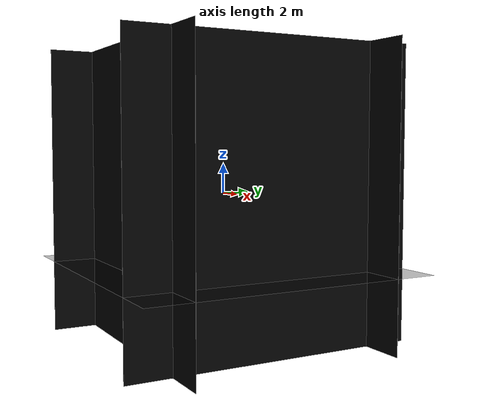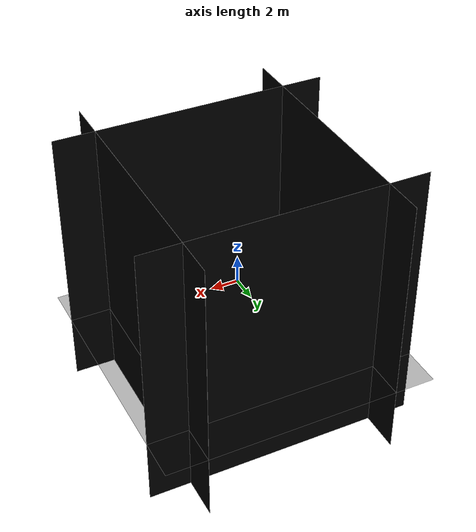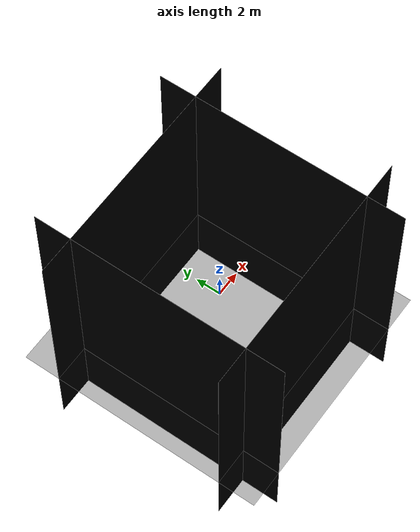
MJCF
<mujoco>
    <compiler angle="radian" texturedir="texture/"/>
	<option timestep="0.002" iterations="50" apirate="50" solver="Newton" tolerance="1e-10" cone="elliptic"/>
	<size njmax="600" nconmax="150" nstack="300000"/>
	<statistic extent="1" center="0 -0.2 0.2"/>
    <visual>
        <quality shadowsize="2048"/>
        <map fogstart="6" fogend="10"/>
        <headlight diffuse=".6 .6 .6" specular="0 0 0"/>
	</visual>

	<include file="assets.xml"/>
	<include file="camera.xml"/>
	<include file="room.xml"/>
	<worldbody>
	</worldbody>
</mujoco>

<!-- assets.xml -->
<mujoco>
    <!-- ======== Room ======= -->
    <asset>
        <texture name="marble2d" type="2d" file="marble.png"/>
        <texture name="marblecube" type="cube" file="marble.png"/>

        <material name="groundplane" specular="0" shininess="0." reflectance="0" rgba="0. 0. 0. 1"/>
        <material name="table2d" texture="marble2d" reflectance="0.6" rgba=".8 .8 .8 1"/>
        <material name="tablecube" texture="marblecube" rgba=".8 .8 .8 1"/>
    </asset>

    <!-- ======== Objects ======= -->
	<asset>
		<texture file="wood.png"/>
		<texture name="wood2d" type="2d" file="wood.png"/>
		<texture file="square.png"/>
		<texture name="foil" file="silverRaw.png"/>
        <texture file="woodb.png"/>

		<material name="MatFoil" texture="foil" specular="1" shininess=".3"  rgba=".9 .9 .9 1"/>
		<material name="MatPlane" specular=".3" shininess=".3" rgba=".3 .3 .2 1"/>
        <material name="MatWood" texture="wood" specular="0.4" shininess=".1" texrepeat="3 3"/>
        <material name="MatSquare" texture="square" specular="1" shininess=".6"  rgba=".8 .8 .8 1"/>
        <material name="MatWoodR" texture="wood" specular="1" shininess=".3"  rgba="1 0.5 0.5 1"/>
        <material name="MatWoodG" texture="wood" specular="1" shininess=".3"  rgba="0.2 1 0.2 1"/>
        <material name="MatWoodB" texture="woodb" specular="1" shininess=".3"/>
	</asset>

</mujoco>

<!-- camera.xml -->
<mujoco>
	<worldbody>
		<!-- Camera base -->
		<body name="rgb_camera_base" mocap="true" pos="0 1 0">
			<geom type="sphere" conaffinity="0" contype="0" pos="0 0 0" rgba="0 0 0 0.0" size="0.021 0.021 0.021"/>

			<!-- Camera arm -->
			<body name="rgb_camera_arm" pos="0 0 0" axisangle="0 0 1 -1.570796">
				<geom type="box" size="0.01 0.01 0.01" zaxis="0 1 0" rgba="0 0 0 0.0"/>
				<joint name="rgb_camera_jointz" type="hinge" damping="0.4" pos="0 0 0" axis="0 0 1" range="-1.57 1.57"/>

				<!-- Camera head -->
				<body name="rgb_camera_head" pos="0 0.0 0" axisangle="1 0 0 1.570796">
					<joint name="rgb_camera_jointx" type="hinge" damping="0.4" pos="0 0 0" axis="1 0 0" range="-1.57 1.57"/>
					<geom type="box" size="0.02 0.02 0.02" zaxis="0 1 0" rgba="0 0 0 0.0"/>
					<camera name="rgb_camera" pos="0 0 0" euler="0 0 0" fovy="45" ipd="0.068"/>
				</body>
			</body>
		</body>
	</worldbody>
</mujoco>

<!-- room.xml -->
<mujoco>
	<worldbody>
		<!-- ======= LIGHT ======= -->
		<light directional="false" cutoff="35" exponent="10" diffuse=".7 .7 .7" pos="0. 0. 1.5" dir="0. 0. -1." specular=".3 .3 .3"/>

		<!-- ======= Background  ======= -->
		<geom name="groundplane" contype="0" conaffinity="0" type="plane" pos="0 0 -5" size="10 10 0.25" material="groundplane"/>
		<geom name="ceilplane"   contype="0" conaffinity="0" type="plane" pos="0 0 5" zaxis="0 0 -1" size="10 10 0.25" material="groundplane"/>
		<geom name="groundwall1" type="plane" material="groundplane" pos="7 0 0." zaxis="-1 0 0" size="10 10 .25"/>
		<geom name="groundwall2" type="plane" material="groundplane" pos="-7 0 0." zaxis="1 0 0" size="10 10 .25"/>
		<geom name="groundwall3" type="plane" material="groundplane" pos="0 7 0." zaxis="0 -1 0" size="10 10 .25"/>
		<geom name="groundwall4" type="plane" material="groundplane" pos="0 -7 0." zaxis="0 1 0" size="10 10 .25"/>

	</worldbody>

</mujoco>
